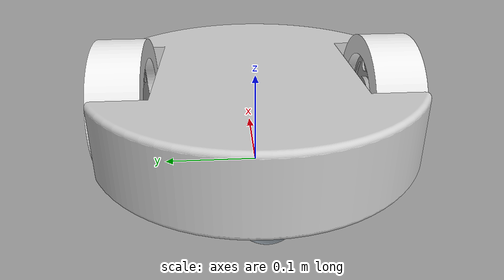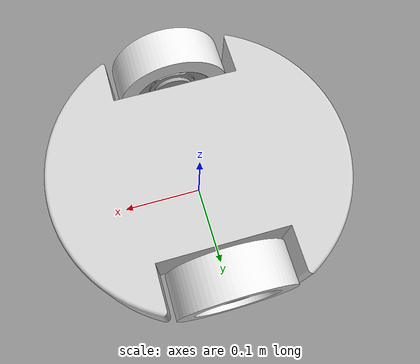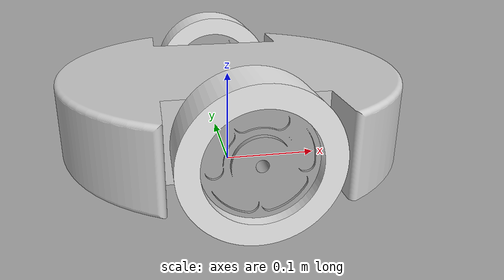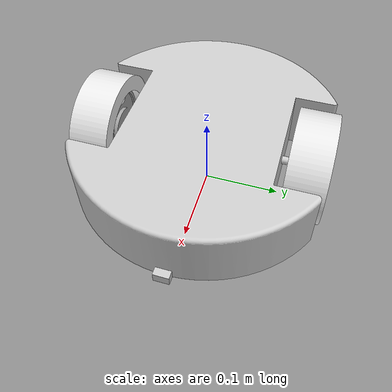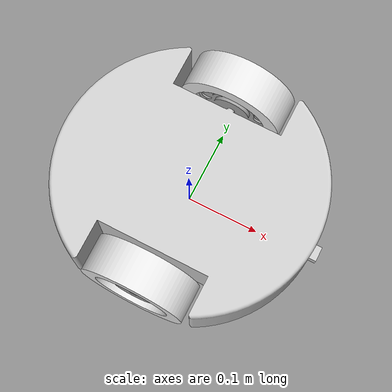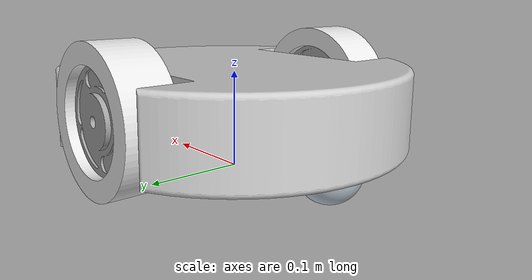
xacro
<?xml version="1.0" ?>
<!-- Generated using onshape-to-robot -->
<!-- Onshape document_id: 4875ec4cbd861bf59dacc3de -->
<robot xmlns:xacro="http://www.ros.org/wiki/xacro">

    <!-- Link base footprint-->
    <link name="base_footprint" />

    <!-- Joint base footprint -->
    <joint name="base_joint" type="fixed">
        <parent link="base_footprint"/>
        <child link="base_link"/>
        <origin xyz="0.0 0.0 0.1" rpy="0.0 0.0 0.0"/>
    </joint>

    <!-- Link base -->
  <link name="base_link">
    <inertial>
      <origin xyz="0.00173747 1.94352e-06 -0.0301107" rpy="0 0 0"/>
      <mass value="5.99226"/>
      <inertia ixx="0.0320319" ixy="-4.38482e-07" ixz="2.87354e-05" iyy="0.0561975" iyz="9.11259e-08" izz="0.0817942"/>
    </inertial>
    <visual>
      <origin xyz="0.00160544 -6.245e-17 -0.0709025" rpy="0 -0 0"/>
      <geometry>
        <mesh filename="package://my_robot_description/assets/base.stl"/>
      </geometry>
      <material name="base_material">
        <color rgba="0.8 0.8 0.8 1"/>
      </material>
    </visual>
    <collision>
      <origin xyz="0.00160544 -6.245e-17 -0.0709025" rpy="0 -0 0"/>
      <geometry>
        <mesh filename="package://my_robot_description/assets/base.stl"/>
      </geometry>
    </collision>
  </link>

  <!-- Link hub -->
  <link name="hub_link">
    <inertial>
      <origin xyz="1.29274e-18 -4.20141e-18 -0.02" rpy="0 0 0"/>
      <mass value="1.05962"/>
      <inertia ixx="0.000713534" ixy="0" ixz="0" iyy="0.000713534" iyz="0" izz="0.00124537"/>
    </inertial>
    <visual>
      <origin xyz="0 0 -0.02" rpy="1.5708 -0 0"/>
      <geometry>
        <mesh filename="package://my_robot_description/assets/hub.stl"/>
      </geometry>
      <material name="hub_material">
        <color rgba="0.647059 0.647059 0.647059 1"/>
      </material>
    </visual>
    <collision>
      <origin xyz="0 0 -0.02" rpy="1.5708 -0 0"/>
      <geometry>
        <mesh filename="package://my_robot_description/assets/hub.stl"/>
      </geometry>
    </collision>
  </link>

  <!-- Link rubber_tire -->
  <link name="rubber_tire_link">
    <inertial>
      <origin xyz="-1.52248e-50 -3.07598e-18 -6.74047e-18" rpy="0 0 0"/>
      <mass value="0.41469"/>
      <inertia ixx="0.000853571" ixy="0" ixz="0" iyy="0.000853571" iyz="0" izz="0.00153435"/>
    </inertial>
    <visual>
      <origin xyz="0 -1.04083e-17 0" rpy="-1.5708 -0 0"/>
      <geometry>
        <mesh filename="package://my_robot_description/assets/rubber_tire.stl"/>
      </geometry>
      <material name="rubber_tire_material">
        <color rgba="0.917647 0.917647 0.917647 1"/>
      </material>
    </visual>
    <collision>
      <origin xyz="0 -1.04083e-17 0" rpy="-1.5708 -0 0"/>
      <geometry>
        <mesh filename="package://my_robot_description/assets/rubber_tire.stl"/>
      </geometry>
    </collision>
  </link>

  <!-- Joint from hub to rubber_tire -->
  <joint name="left_assembly_joint" type="fixed">
    <origin xyz="0 -3.46945e-18 -0.02" rpy="3.14159 -0 0"/>
    <parent link="hub_link"/>
    <child link="rubber_tire_link"/>
  </joint>

  <!-- Joint from base to hub -->
  <joint name="left_wheel_base_joint" type="continuous">
    <origin xyz="0.00160544 -0.115 -0.0309025" rpy="-1.5708 -0 0"/>
    <parent link="base_link"/>
    <child link="hub_link"/>
    <axis xyz="0 0 1"/>
    <limit effort="100" velocity="100" />
  </joint>

  <!-- Link hub_2 -->
  <link name="hub_2_link">
    <inertial>
      <origin xyz="1.29274e-18 4.20141e-18 -0.02" rpy="0 0 0"/>
      <mass value="1.05962"/>
      <inertia ixx="0.000713534" ixy="0" ixz="0" iyy="0.000713534" iyz="0" izz="0.00124537"/>
    </inertial>
    <visual>
      <origin xyz="0 0 -0.02" rpy="-1.5708 -0 0"/>
      <geometry>
        <mesh filename="package://my_robot_description/assets/hub.stl"/>
      </geometry>
      <material name="hub_2_material">
        <color rgba="0.647059 0.647059 0.647059 1"/>
      </material>
    </visual>
    <collision>
      <origin xyz="0 0 -0.02" rpy="-1.5708 -0 0"/>
      <geometry>
        <mesh filename="package://my_robot_description/assets/hub.stl"/>
      </geometry>
    </collision>
  </link>

  <!-- Link rubber_tire_2 -->
  <link name="rubber_tire_2_link">
    <inertial>
      <origin xyz="1.23149e-33 -3.07598e-18 -6.74047e-18" rpy="0 0 0"/>
      <mass value="0.41469"/>
      <inertia ixx="0.000853571" ixy="0" ixz="-1.2438e-19" iyy="0.000853571" iyz="0" izz="0.00153435"/>
    </inertial>
    <visual>
      <origin xyz="0 -1.04083e-17 0" rpy="-1.5708 -1.82701e-16 0"/>
      <geometry>
        <mesh filename="package://my_robot_description/assets/rubber_tire.stl"/>
      </geometry>
      <material name="rubber_tire_2_material">
        <color rgba="0.917647 0.917647 0.917647 1"/>
      </material>
    </visual>
    <collision>
      <origin xyz="0 -1.04083e-17 0" rpy="-1.5708 -1.82701e-16 0"/>
      <geometry>
        <mesh filename="package://my_robot_description/assets/rubber_tire.stl"/>
      </geometry>
    </collision>
  </link>

  <!-- Joint from hub_2 to rubber_tire_2 -->
  <joint name="right_assembly_joint" type="fixed">
    <origin xyz="0 3.46945e-18 -0.02" rpy="0 -0 0"/>
    <parent link="hub_2_link"/>
    <child link="rubber_tire_2_link"/>
  </joint>

  <!-- Joint from base to hub_2 -->
  <joint name="right_wheel_base_joint" type="continuous">
    <origin xyz="0.00160544 0.115 -0.0309025" rpy="1.5708 -0 1.82701e-16"/>
    <parent link="base_link"/>
    <child link="hub_2_link"/>
    <axis xyz="0 0 -1"/>
    <limit effort="100" velocity="100"/>
  </joint>

  <!-- Link caster_wheel -->
  <link name="caster_wheel_link">
    <inertial>
      <origin xyz="0 0 -2.52583e-18" rpy="0 0 0"/>
      <mass value="0.124407"/>
      <inertia ixx="4.47865e-05" ixy="0" ixz="0" iyy="4.47865e-05" iyz="0" izz="4.47865e-05"/>
    </inertial>
    <visual>
      <origin xyz="0 0 0" rpy="0 0 0"/>
      <geometry>
        <mesh filename="package://my_robot_description/assets/caster_wheel.stl"/>
      </geometry>
      <material name="caster_wheel_material">
        <color rgba="0.713725 0.760784 0.8 1"/>
      </material>
    </visual>
    <collision>
      <origin xyz="0 0 0" rpy="0 0 0"/>
      <geometry>
        <mesh filename="package://my_robot_description/assets/caster_wheel.stl"/>
      </geometry>
    </collision>
  </link>

  <!-- Joint from base to caster_wheel -->
  <joint name="front_caster_wheel_base_joint" type="fixed">
    <origin xyz="0.133105 -6.31542e-17 -0.0709025" rpy="0 0 0"/>
    <parent link="base_link"/>
    <child link="caster_wheel_link"/>
  </joint>

  <!-- Link caster_wheel_2 -->
  <link name="caster_wheel_2_link">
    <inertial>
      <origin xyz="0 0 -2.52583e-18" rpy="0 0 0"/>
      <mass value="0.124407"/>
      <inertia ixx="4.47865e-05" ixy="0" ixz="0" iyy="4.47865e-05" iyz="0" izz="4.47865e-05"/>
    </inertial>
    <visual>
      <origin xyz="0 0 0" rpy="0 -0 0"/>
      <geometry>
        <mesh filename="package://my_robot_description/assets/caster_wheel.stl"/>
      </geometry>
      <material name="caster_wheel_2_material">
        <color rgba="0.713725 0.760784 0.8 1"/>
      </material>
    </visual>
    <collision>
      <origin xyz="0 0 0" rpy="0 0 0"/>
      <geometry>
        <mesh filename="package://my_robot_description/assets/caster_wheel.stl"/>
      </geometry>
    </collision>
  </link>

   <!-- Joint from base to caster_wheel_2 -->
  <joint name="back_caster_wheel_base_joint" type="fixed">
    <origin xyz="-0.129895 -6.245e-17 -0.0709025" rpy="0 0 0"/>
    <parent link="base_link"/>
    <child link="caster_wheel_2_link"/>
  </joint>

</robot>
